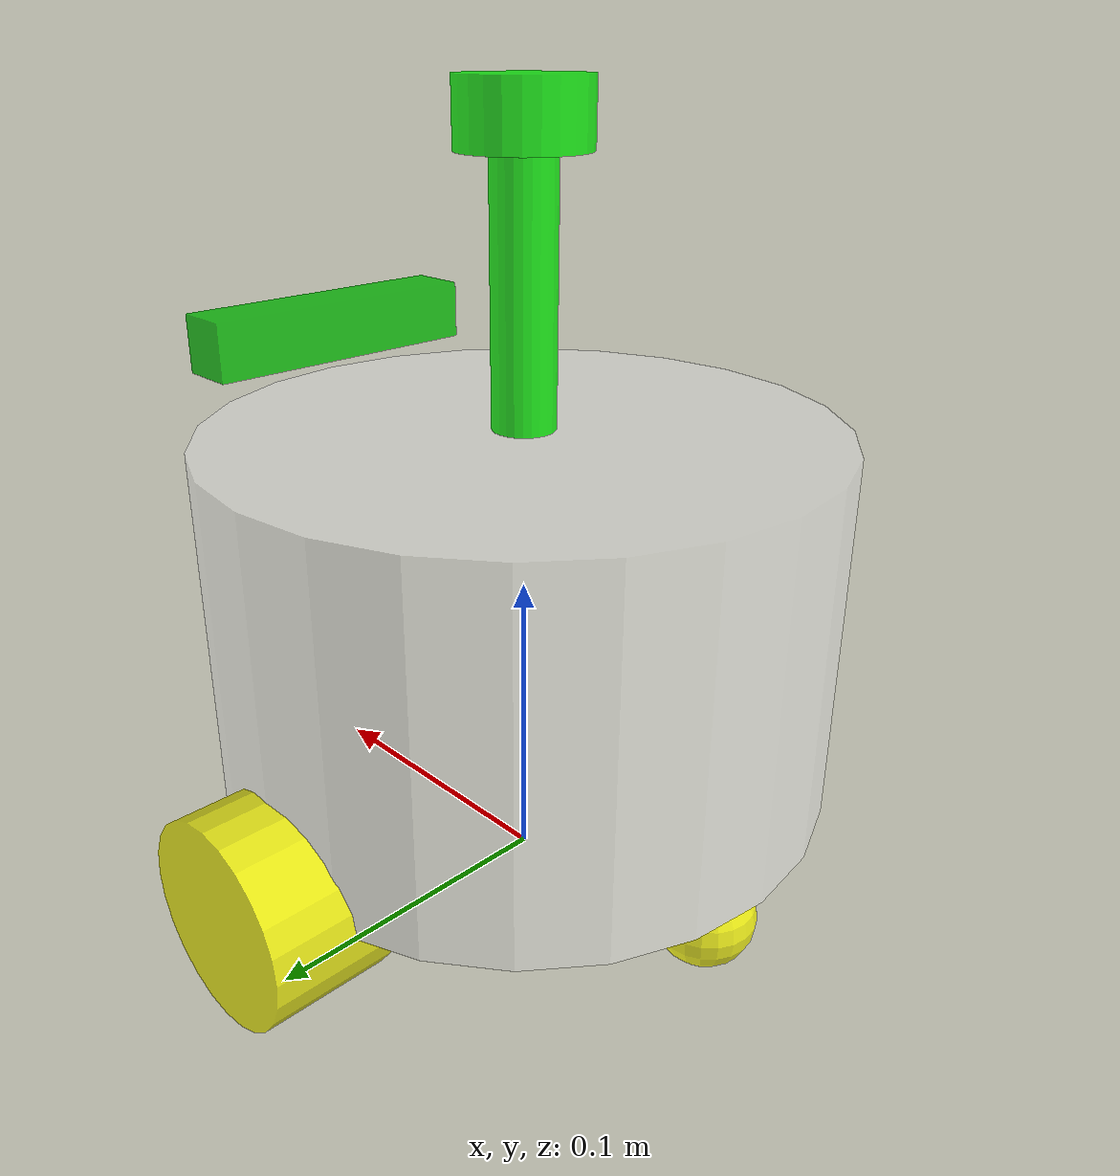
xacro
<?xml version="1.0"?>
<robot xmlns:xacro="http://www.ros.org/wiki/xacro" name="fishbot">
    <xacro:include filename="$(find fishbot_description)/urdf/fishbot/base.urdf.xacro" />
    <xacro:include filename="$(find fishbot_description)/urdf/fishbot/sensor/imu.urdf.xacro" />
    <xacro:include filename="$(find fishbot_description)/urdf/fishbot/sensor/laser.urdf.xacro" />
    <xacro:include filename="$(find fishbot_description)/urdf/fishbot/sensor/camera.urdf.xacro" />
    <xacro:include filename="$(find fishbot_description)/urdf/fishbot/actuator/wheel.urdf.xacro" />
    <xacro:include filename="$(find fishbot_description)/urdf/fishbot/actuator/caster.urdf.xacro" />
    <!-- 插件 -->
    <xacro:include filename="$(find fishbot_description)/urdf/fishbot/plugins/gazebo_control_plugin.xacro" />
    <xacro:include filename="$(find fishbot_description)/urdf/fishbot/plugins/gazebo_sensor_plugin.xacro" />
    <xacro:include filename="$(find fishbot_description)/urdf/fishbot/fishbot.ros2_control.xacro" />

    <xacro:base_xacro length="0.12" radius="0.1" />
    <xacro:imu_xacro xyz="0 0 0.02" />
    <xacro:laser_xacro xyz="0 0 0.10" />
    <xacro:camera_xacro xyz="0.10 0 0.075" />
    <xacro:wheel_xacro wheel_name="left" xyz="0 0.10 -0.06" />
    <xacro:wheel_xacro wheel_name="right" xyz="0 -0.10 -0.06" />
    <xacro:caster_xacro caster_name="front" xyz="0.08 0.0 -0.076" />
    <xacro:caster_xacro caster_name="back" xyz="-0.08 0.0 -0.076" />
    <xacro:fishbot_ros2_control />
    <xacro:gazebo_sensor_plugin />
</robot>

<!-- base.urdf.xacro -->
<robot xmlns:xacro="http://www.ros.org/wiki/xacro">

    <xacro:include filename="$(find fishbot_description)/urdf/fishbot/common_inertia.xacro" />

    <!-- body -->
    <xacro:macro name="base_xacro" params="length radius">
        <link name="base_link">
            <visual>
                <origin xyz="0 0 0" rpy="0 0 0" />
                <geometry>
                    <cylinder length="${length}" radius="${radius}" />
                </geometry>
                <material name="white">
                    <color rgba="1.0 1.0 1.0 0.5" />
                </material>
            </visual>
            <collision>
                <origin xyz="0 0 0" rpy="0 0 0" />
                <geometry>
                    <cylinder length="${length}" radius="${radius}" />
                </geometry>
                <material name="white">
                    <color rgba="1.0 1.0 1.0 0.5" />
                </material>
            </collision>

            <xacro:cylinder_inertia m="1.0" r="${radius}" h="${length}" />
        </link>

        <link name="base_footprint" />

        <joint name="base_joint" type="fixed">
            <parent link="base_footprint" />
            <child link="base_link" />
            <origin xyz="0 0 ${length/2.0+0.032+0.001}"  />
        </joint>
    </xacro:macro>
</robot>

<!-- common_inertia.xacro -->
<robot xmlns:xacro="http://www.ros.org/wiki/xacro">
    <xacro:macro name="box_inertia" params="m w h d">
        <inertial>
            <mass value="${m}" />
            <inertia ixx="${(m/12)*(h*h+d*d)}" ixy="0.0" ixz="0.0" iyy="${(m/12)*(w*w+d*d)}" iyz="0.0" izz="${(m/12)*(w*w+h*h)}" />
        </inertial>
    </xacro:macro>

    <xacro:macro name="cylinder_inertia" params="m r h">
        <inertial>
            <mass value="${m}" />
            <inertia ixx="${(m/12)*(3*r*r+h*h)}" ixy="0.0" ixz="0.0" iyy="${(m/12)*(3*r*r+h*h)}" iyz="0.0" izz="${(m/2)*(r*r)}" />
        </inertial>
    </xacro:macro>

    <xacro:macro name="sphere_inertia" params="m r">
        <inertial>
            <mass value="${m}" />
            <inertia ixx="${(2/5)*m*(r*r)}" ixy="0.0" ixz="0.0" iyy="${(2/5)*m*(r*r)}" iyz="0.0" izz="${(2/5)*m*(r*r)}" />
        </inertial>
    </xacro:macro>
</robot>

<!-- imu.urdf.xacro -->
<robot xmlns:xacro="http://www.ros.org/wiki/xacro">
    <xacro:include filename="$(find fishbot_description)/urdf/fishbot/common_inertia.xacro" />

    <xacro:macro name="imu_xacro" params="xyz">
        <!-- imu -->
        <link name="imu_link">
            <visual>
                <origin xyz="0 0 0" rpy="0 0 0" />
                <geometry>
                    <box size="0.02 0.02 0.02" />
                </geometry>
                <material name="black">
                    <color rgba="0.0 0.0 0.0 0.8" />
                </material>
            </visual>
            <collision>
                <origin xyz="0 0 0" rpy="0 0 0" />
                <geometry>
                    <box size="0.02 0.02 0.02" />
                </geometry>
                <material name="black">
                    <color rgba="0.0 0.0 0.0 0.8" />
                </material>
            </collision>
            <xacro:box_inertia m="0.05" w="0.02" h="0.02" d="0.02"/>

        </link>

        <!-- joint -->
        <joint name="imu_joint" type="fixed">
            <parent link="base_link" />
            <child link="imu_link" />
            <origin xyz="${xyz}"  />
        </joint>
    </xacro:macro>
</robot>

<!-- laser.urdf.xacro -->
<robot xmlns:xacro="http://www.ros.org/wiki/xacro">
    <xacro:include filename="$(find fishbot_description)/urdf/fishbot/common_inertia.xacro" />

    <xacro:macro name="laser_xacro" params="xyz">
        <!-- laser -->
        <link name="laser_cylinder_link">
            <visual>
                <origin xyz="0 0 0" rpy="0 0 0" />
                <geometry>
                    <cylinder length="0.10" radius="0.01" />
                </geometry>
                <material name="green">
                    <color rgba="0.0 1.0 0.0 0.8" />
                </material>
            </visual>
            <collision>
                <origin xyz="0 0 0" rpy="0 0 0" />
                <geometry>
                    <cylinder length="0.10" radius="0.01" />
                </geometry>
                <material name="green">
                    <color rgba="0.0 1.0 0.0 0.8" />
                </material>
            </collision>
            <xacro:cylinder_inertia m="0.05" r="0.01" h="0.10" />
        </link>
        <gazebo reference="laser_cylinder_link">
            <visual>
                <material>
                <diffuse>0 0 0 1</diffuse>
                <ambient>0 0 0 1</ambient>
                <specular>0.1 0.1 0.1 1</specular>
                </material>
            </visual>
        </gazebo>
        <joint name="laser_cylinder_joint" type="fixed">
            <parent link="base_link" />
            <child link="laser_cylinder_link" />
            <origin xyz="${xyz}"  />
        </joint>

        <link name="laser_link">
            <visual>
                <origin xyz="0 0 0" rpy="0 0 0" />
                <geometry>
                    <cylinder length="0.02" radius="0.02" />
                </geometry>
                <material name="green">
                    <color rgba="0.0 1.0 0.0 0.8" />
                </material>
            </visual>
            <collision>
                <origin xyz="0 0 0" rpy="0 0 0" />
                <geometry>
                    <cylinder length="0.02" radius="0.02" />
                </geometry>
                <material name="green">
                    <color rgba="0.0 1.0 0.0 0.8" />
                </material>
            </collision>
            <xacro:cylinder_inertia m="0.1" r="0.02" h="0.02" />
        </link>
        <gazebo reference="laser_link">
            <visual>
                <material>
                <diffuse>0 0 0 1</diffuse>
                <ambient>0 0 0 1</ambient>
                <specular>0.1 0.1 0.1 1</specular>
                </material>
            </visual>
        </gazebo>
        <joint name="laserjoint" type="fixed">
            <parent link="laser_cylinder_link" />
            <child link="laser_link" />
            <origin xyz="0 0 0.05"  />
        </joint>
    </xacro:macro>
</robot>

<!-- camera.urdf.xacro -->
<robot xmlns:xacro="http://www.ros.org/wiki/xacro">
    <xacro:include filename="$(find fishbot_description)/urdf/fishbot/common_inertia.xacro" />

    <xacro:macro name="camera_xacro" params="xyz">
        <!-- camera -->
        <link name="camera_link">
            <visual>
                <origin xyz="0 0 0" rpy="0 0 0" />
                <geometry>
                    <box size="0.02 0.10 0.02" />
                </geometry>
                <material name="green">
                    <color rgba="0.0 0.8 0.0 0.8" />
                </material>
            </visual>
            <collision>
                <origin xyz="0 0 0" rpy="0 0 0" />
                <geometry>
                    <box size="0.02 0.10 0.02" />
                </geometry>
                <material name="green">
                    <color rgba="0.0 0.8 0.0 0.8" />
                </material>
            </collision>
            <xacro:box_inertia m="0.1" w="0.02" h="0.10" d="0.02"/>

        </link>

        <!-- joint -->
        <joint name="camera_joint" type="fixed">
            <parent link="base_link" />
            <child link="camera_link" />
            <origin xyz="${xyz}"  />
        </joint>
    </xacro:macro>
</robot>

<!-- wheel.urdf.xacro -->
<robot xmlns:xacro="http://www.ros.org/wiki/xacro">
    <xacro:include filename="$(find fishbot_description)/urdf/fishbot/common_inertia.xacro" />

    <xacro:macro name="wheel_xacro" params="wheel_name xyz">
        <!-- wheel -->
        <link name="${wheel_name}_wheel_link">
            <visual>
                <origin xyz="0 0 0" rpy="1.57079 0 0" />
                <geometry>
                    <cylinder length="0.04" radius="0.032" />
                </geometry>
                <material name="yellow">
                    <color rgba="1.0 1.0 0.0 0.8" />
                </material>
            </visual>
            <collision>
                <origin xyz="0 0 0" rpy="1.57079 0 0" />
                <geometry>
                    <cylinder length="0.04" radius="0.032" />
                </geometry>
                <material name="yellow">
                    <color rgba="1.0 1.0 0.0 0.8" />
                </material>
            </collision>
            <xacro:cylinder_inertia m="0.05" r="0.032" h="0.04" />
        </link>

        <gazebo reference="${wheel_name}_wheel_link">
            <visual>
                <material>
                    <diffuse>1 0 0 1</diffuse>
                    <ambient>1 0 0 1</ambient>
                    <specular>0.9 0.1 0.1 1</specular>
                </material>
            </visual>
            <!-- 物理属性统一放入 collision 标签内 -->
            <collision>
                <surface>
                <!-- 1. 摩擦参数：mu1 -> mu, mu2 -> mu2 -->
                <friction>
                    <ode>
                    <mu>20.0</mu>    <!-- 原 mu1 的值 -->
                    <mu2>20.0</mu2>  <!-- 原 mu2 的值 -->
                    <!-- 如果轮子有明确的主摩擦方向，建议加上 fdir1 -->
                    </ode>
                </friction>

                <!-- 2. 接触参数：kp, kd 移入 contact/ode -->
                <contact>
                    <ode>
                    <kp>1000000000.0</kp>  <!-- 原 kp 的值 -->
                    <kd>1.0</kd>           <!-- 原 kd 的值 -->
                    </ode>
                </contact>
                </surface>
            </collision>
        </gazebo>

        <!-- joint -->
        <joint name="${wheel_name}_wheel_joint" type="continuous">
            <parent link="base_link" />
            <child link="${wheel_name}_wheel_link" />
            <origin xyz="${xyz}"  />
            <axis xyz="0 1 0" />
        </joint>
    </xacro:macro>
</robot>

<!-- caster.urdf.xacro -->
<robot xmlns:xacro="http://www.ros.org/wiki/xacro">
    <xacro:include filename="$(find fishbot_description)/urdf/fishbot/common_inertia.xacro" />

    <xacro:macro name="caster_xacro" params="caster_name xyz">
        <!-- caster -->
        <link name="${caster_name}_caster_link">
            <visual>
                <origin xyz="0 0 0" rpy="0 0 0" />
                <geometry>
                    <sphere radius="0.016" />
                </geometry>
                <material name="yellow">
                    <color rgba="1.0 1.0 0.0 0.8" />
                </material>
            </visual>
            <collision>
                <origin xyz="0 0 0" rpy="0 0 0" />
                <geometry>
                    <sphere radius="0.016" />
                </geometry>
                <material name="yellow">
                    <color rgba="1.0 1.0 0.0 0.8" />
                </material>
            </collision>
            <xacro:sphere_inertia m="0.05" r="0.016" />
        </link>

        <gazebo reference="${caster_name}_caster_link">
            <visual>
                <material>
                    <diffuse>0 1 0 1</diffuse>
                    <ambient>0 1 0 1</ambient>
                    <specular>0.1 0.9 0.1 1</specular>
                </material>
            </visual>
            <!-- 物理属性统一放入 collision 标签内 -->
            <collision>
                <surface>
                <!-- 1. 摩擦参数：mu1 -> mu, mu2 -> mu2 -->
                <friction>
                    <ode>
                    <mu>0.0</mu>    <!-- 原 mu1 的值 -->
                    <mu2>0.0</mu2>  <!-- 原 mu2 的值 -->
                    <!-- 如果轮子有明确的主摩擦方向，建议加上 fdir1 -->
                    </ode>
                </friction>

                <!-- 2. 接触参数：kp, kd 移入 contact/ode -->
                <contact>
                    <ode>
                    <kp>1000000000.0</kp>  <!-- 原 kp 的值 -->
                    <kd>1.0</kd>           <!-- 原 kd 的值 -->
                    </ode>
                </contact>
                </surface>
            </collision>
        </gazebo>

        <!-- joint -->
        <joint name="${caster_name}_caster_joint" type="fixed">
            <parent link="base_link" />
            <child link="${caster_name}_caster_link" />
            <origin xyz="${xyz}"  />
            <axis xyz="0 0 0" />
        </joint>
    </xacro:macro>
</robot>
